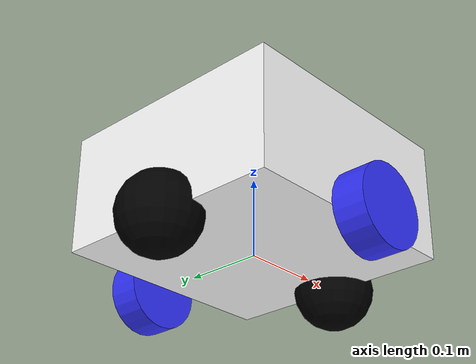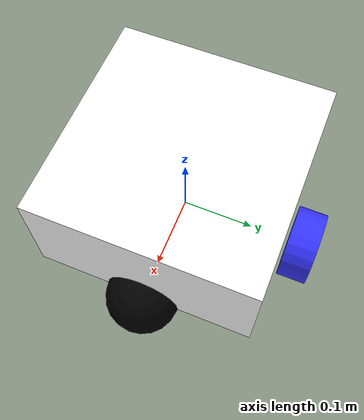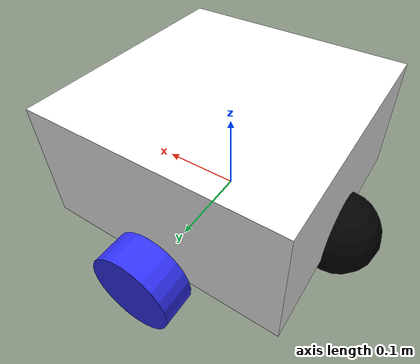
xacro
<?xml version="1.0"?>
<robot xmlns:xacro="http://www.ros.org/wiki/xacro">

    <xacro:include filename="inertial_macros.xacro"/>

    <!--Materials-->

    <material name="white">
        <color rgba="1 1 1 1"/>
    </material>

    <material name="orange">
        <color rgba="1 0.3 0.1 1"/>
    </material>

    <material name="blue">
        <color rgba="0.2 0.2 1 1"/>
    </material>

    <material name="black">
        <color rgba="0 0 0 1"/>
    </material>

    <material name="red">
        <color rgba="1 0 0 1"/>
    </material>

    <!--base_link-->

    <link name="base_link">

    </link>

    <joint name="chassis_joint" type="fixed">
        <parent link="base_link"/>
        <child link="chassis"/>
        <origin xyz="-0.15 0 0"/>
    </joint>

    <!--chassis_link-->

    <link name="chassis">
        <visual>
            <origin xyz="0.15 0 0.075"/>
            <geometry>
                <box size="0.3 0.3 0.15"/>
            </geometry>
            <material name="white"/>
        </visual>

        <collision>
            <origin xyz="0.15 0 0.075"/>
            <geometry>
                <box size="0.3 0.3 0.15"/>
            </geometry>
        </collision>
        <xacro:inertial_box mass="0.5" x="0.3" y="0.3" z="0.15">
            <origin xyz="0.15 0 0.075" rpy="0 0 0"/>
        </xacro:inertial_box>
    </link>

    <gazebo reference="chassis">
        <material>Gazebo/White</material>
    </gazebo>
    <!--Left_wheel-->

    <joint name="left_wheel_joint" type="continuous">
        <parent link="base_link"/>
        <child link="left_wheel"/>
        <origin xyz="0 0.175 0" rpy="-${pi/2} 0 0"/>
        <axis xyz="0 0 1"/>
    </joint>

    <link name="left_wheel">
        <visual>
            <geometry>
                <cylinder radius="0.05" length="0.04"/>
            </geometry>
            <material name="blue"/>
        </visual>
        <collision>
            <geometry>
                <cylinder radius="0.05" length="0.04"/>
            </geometry>
        </collision>
        <xacro:inertial_cylinder mass="0.1" length="0.04" radius="0.05">
            <origin xyz="0 0 0" rpy="0 0 0"/>
        </xacro:inertial_cylinder>
    </link>

    <gazebo reference="left_wheel">
        <material>Gazebo/Blue</material>
    </gazebo>

    <!--right_wheel-->

    <joint name="right_wheel_joint" type="continuous">
        <parent link="base_link"/>
        <child link="right_wheel"/>
        <origin xyz="0 -0.175 0" rpy="${pi/2} 0 0"/>
        <axis xyz="0 0 -1"/>
    </joint>

    <link name="right_wheel">
        <visual>
            <geometry>
                <cylinder radius="0.05" length="0.04"/>
            </geometry>
            <material name="blue"/>
        </visual>
        <collision>
            <geometry>
                <cylinder radius="0.05" length="0.04"/>
            </geometry>
        </collision>
        <xacro:inertial_cylinder mass="0.1" length="0.04" radius="0.05">
            <origin xyz="0 0 0" rpy="0 0 0"/>
        </xacro:inertial_cylinder>
    </link>

    <gazebo reference="right_wheel">
        <material>Gazebo/Blue</material>
    </gazebo>

    <!--caster_wheels-->

    <joint name="caster_wheel_joint" type="fixed">
        <parent link="chassis"/>
        <child link="caster_wheel"/>
        <origin xyz="0.3 0 0"/>
    </joint>

    <link name="caster_wheel">
        <visual>
            <geometry>
                <sphere radius="0.05"/>
            </geometry>
            <material name="black"/>
        </visual>
        <collision>
            <geometry>
                <sphere radius="0.05"/>
            </geometry>
        </collision>
        <xacro:inertial_sphere mass="0.1" radius="0.05">
            <origin xyz="0 0 0" rpy="0 0 0"/>
        </xacro:inertial_sphere>
    </link>

    <gazebo reference="caster_wheel">
        <material>Gazebo/Black</material>
        <mu1 value="0.001"/>
        <mu2 value="0.001"/>
    </gazebo>

    <joint name="caster_wheel2_joint" type="fixed">
        <parent link="chassis"/>
        <child link="caster2_wheel"/>
        <origin xyz="0 0 0"/>
    </joint>

    <link name="caster2_wheel">
        <visual>
            <geometry>
                <sphere radius="0.05"/>
            </geometry>
            <material name="black"/>
        </visual>
        <collision>
            <geometry>
                <sphere radius="0.05"/>
            </geometry>
        </collision>
        <xacro:inertial_sphere mass="0.1" radius="0.05">
            <origin xyz="0 0 0" rpy="0 0 0"/>
        </xacro:inertial_sphere>
    </link>

    <gazebo reference="caster2_wheel">
        <material>Gazebo/Black</material>
        <mu1 value="0.001"/>
        <mu2 value="0.001"/>
    </gazebo>

</robot>
